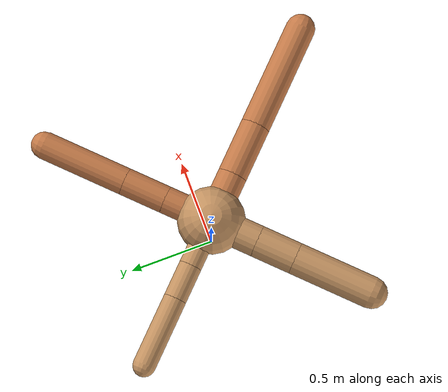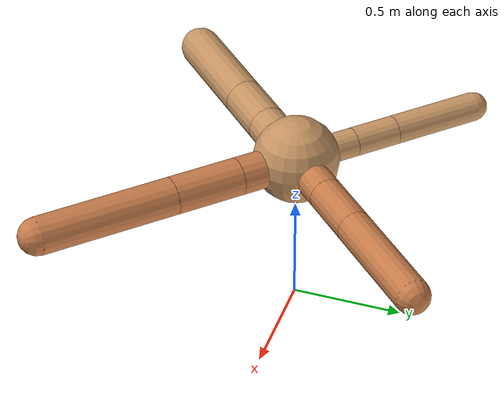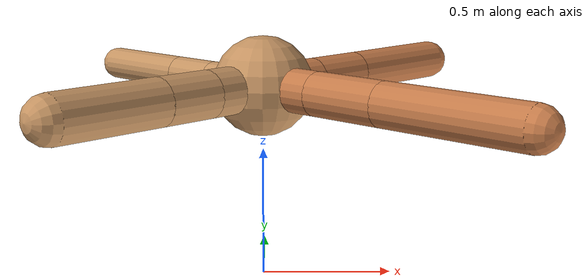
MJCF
<?xml version="1.0" ?>
<mujoco model="ant">

	<compiler angle="degree" coordinate="local" inertiafromgeom="true"/>

	<option integrator="RK4" timestep="0.01"/>

	<custom>

		<numeric data="0.0 0.0 0.55 1.0 0.0 0.0 0.0 0.0 1.0 0.0 -1.0 0.0 -1.0 0.0 1.0" name="init_qpos"/>

	</custom>

	<default>

		<joint armature="1" damping="1" limited="true"/>

		<geom conaffinity="0" condim="3" density="5.0" friction="1.5 0.1 0.1" margin="0.01" rgba="0.8 0.6 0.4 1"/>

	</default>

	<worldbody>

		<body name="torso" pos="0 0 0.75">

			<geom name="torso_geom" pos="0 0 0" size="0.19315367538410166" type="sphere"/>

			<!--joint armature="0" damping="0" limited="false" margin="0.01" name="root" pos="0 0 0" type="free"/-->

			<body name="front_left_leg" pos="0 0 0">

				<geom fromto="0 0 0 0.2 0.2 0" name="aux_1_geom" size="0.07827204157952944" type="capsule" rgba=".8 .5 .3 1"/>

				<body name="aux_1" pos="0.2 0.2 0">

					<joint axis="0 0 1" name="hip_1" pos="0.0 0.0 0.0" range="-40 40" type="hinge"/>

					<geom fromto="0 0 0 0.17677781141414117 0.17677781141414117 0" name="left_leg_geom" size="0.07827204157952944" type="capsule" rgba=".8 .5 .3 1"/>

					<body pos="0.17677781141414117 0.17677781141414117 0" name="front_left_foot">

						<joint axis="-1 1 0" name="ankle_1" pos="0.0 0.0 0.0" range="30 100" type="hinge"/>

						<geom fromto="0 0 0 0.35355562282828235 0.35355562282828235 0" name="left_ankle_geom" size="0.07827204157952944" type="capsule" rgba=".8 .5 .3 1"/>

					</body>

				</body>

			</body>

			<body name="front_right_leg" pos="0 0 0">

				<geom fromto="0 0 0 -0.2 0.2 0" name="aux_2_geom" size="0.06512121571243049" type="capsule"/>

				<body name="aux_2" pos="-0.2 0.2 0">

					<joint axis="0 0 1" name="hip_2" pos="0.0 0.0 0.0" range="-40 40" type="hinge"/>

					<geom fromto="0 0 0 -0.1443246535715708 0.1443246535715708 0" name="right_leg_geom" size="0.06512121571243049" type="capsule"/>

					<body pos="-0.1443246535715708 0.1443246535715708 0" name="front_right_foot">

						<joint axis="1 1 0" name="ankle_2" pos="0.0 0.0 0.0" range="-100 -30" type="hinge"/>

						<geom fromto="0 0 0 -0.2886493071431416 0.2886493071431416 0" name="right_ankle_geom" size="0.06512121571243049" type="capsule"/>

					</body>

				</body>

			</body>

			<body name="left_back_leg" pos="0 0 0">

				<geom fromto="0 0 0 -0.2 -0.2 0" name="aux_3_geom" size="0.09097419160444291" type="capsule"/>

				<body name="aux_3" pos="-0.2 -0.2 0">

					<joint axis="0 0 1" name="hip_3" pos="0.0 0.0 0.0" range="-40 40" type="hinge"/>

					<geom fromto="0 0 0 -0.16440765415880537 -0.16440765415880537 0" name="back_leg_geom" size="0.09097419160444291" type="capsule"/>

					<body pos="-0.16440765415880537 -0.16440765415880537 0" name="left_back_foot">

						<joint axis="-1 1 0" name="ankle_3" pos="0.0 0.0 0.0" range="-100 -30" type="hinge"/>

						<geom fromto="0 0 0 -0.32881530831761074 -0.32881530831761074 0" name="third_ankle_geom" size="0.09097419160444291" type="capsule"/>

					</body>

				</body>

			</body>

			<body name="right_back_leg" pos="0 0 0">

				<geom fromto="0 0 0 0.2 -0.2 0" name="aux_4_geom" size="0.08412828961294162" type="capsule" rgba=".8 .5 .3 1"/>

				<body name="aux_4" pos="0.2 -0.2 0">

					<joint axis="0 0 1" name="hip_4" pos="0.0 0.0 0.0" range="-40 40" type="hinge"/>

					<geom fromto="0 0 0 0.22049407859037695 -0.22049407859037695 0" name="rightback_leg_geom" size="0.08412828961294162" type="capsule" rgba=".8 .5 .3 1"/>

					<body pos="0.22049407859037695 -0.22049407859037695 0" name="right_back_foot">

						<joint axis="1 1 0" name="ankle_4" pos="0.0 0.0 0.0" range="30 100" type="hinge"/>

						<geom fromto="0 0 0 0.4409881571807539 -0.4409881571807539 0" name="fourth_ankle_geom" size="0.08412828961294162" type="capsule" rgba=".8 .5 .3 1"/>

					</body>

				</body>

			</body>

		</body>

	</worldbody>

	<actuator>

		<motor ctrllimited="true" ctrlrange="-1.0 1.0" joint="hip_4" gear="150"/>

		<motor ctrllimited="true" ctrlrange="-1.0 1.0" joint="ankle_4" gear="150"/>

		<motor ctrllimited="true" ctrlrange="-1.0 1.0" joint="hip_1" gear="150"/>

		<motor ctrllimited="true" ctrlrange="-1.0 1.0" joint="ankle_1" gear="150"/>

		<motor ctrllimited="true" ctrlrange="-1.0 1.0" joint="hip_2" gear="150"/>

		<motor ctrllimited="true" ctrlrange="-1.0 1.0" joint="ankle_2" gear="150"/>

		<motor ctrllimited="true" ctrlrange="-1.0 1.0" joint="hip_3" gear="150"/>

		<motor ctrllimited="true" ctrlrange="-1.0 1.0" joint="ankle_3" gear="150"/>

	</actuator>

</mujoco>
